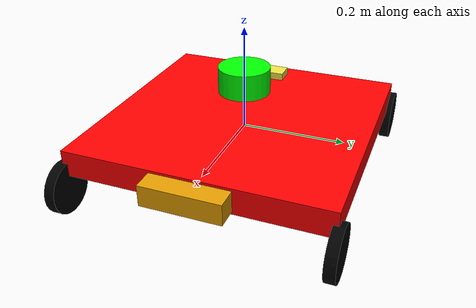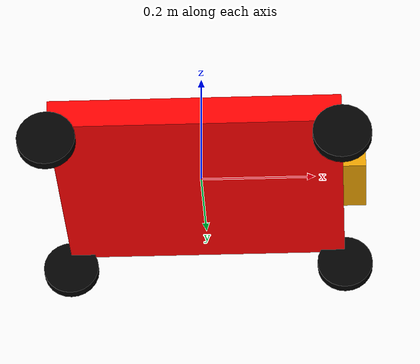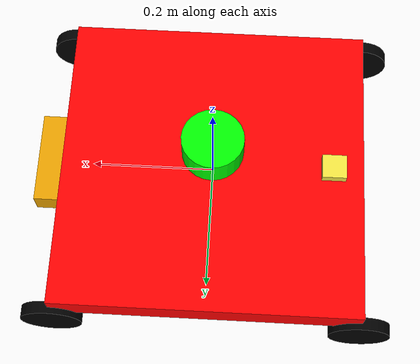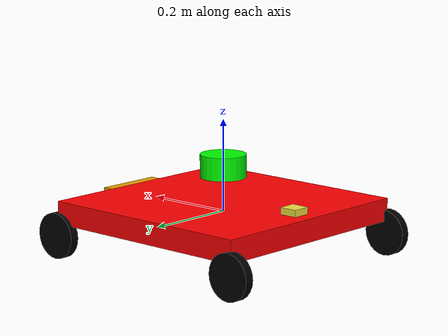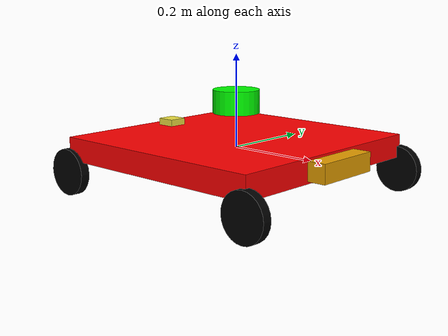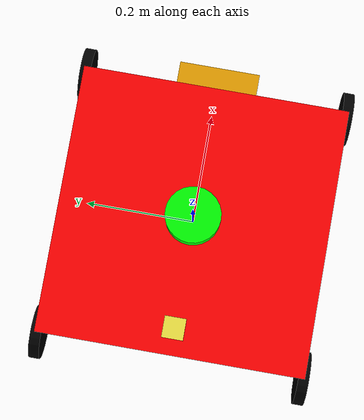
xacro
<?xml version="1.0"?>
<robot xmlns:xacro="http://www.ros.org/wiki/xacro" name="CRAP">
  <xacro:property name="base_width" value="0.5"/>
  <xacro:property name="base_length" value="0.5"/>
  <xacro:property name="base_height" value="0.05"/>

  <xacro:property name="wheel_radius" value="0.05"/>
  <xacro:property name="wheel_width" value="0.02"/>
  <xacro:property name="wheel_ygap" value="0.025"/>
  <xacro:property name="wheel_zoff" value="0.05"/>

  <!-- Define the base link of the robot -->

  <link name="base_link">

    <visual>
      <geometry>
        <box size="${base_length} ${base_width} ${base_height}"/>
      </geometry>
      <material name="red">
        <color rgba="1 0 0 1"/>
      </material>
    </visual>

    <collision>
      <geometry>
          <box size="0.5 0.5 0.05"/>
      </geometry>
    </collision>
  </link>

  <link name="base_link_intertia">
    <inertial>
      <mass value="10"/>
      <origin xyz="0 0 0" rpy="0 0 0"/>
      <inertia ixx="0.1" ixy="0" ixz="0" iyy="0.1" iyz="0" izz="0.1"/>
    </inertial>
  </link>

  <link name="base_footprint"/>

  <joint name="base_joint_inertia" type="fixed">
    <parent link="base_link"/>
    <child link="base_link_intertia"/>
    <origin xyz="0.0 0.0 0.0" rpy="0 0 0"/>
  </joint>

  <joint name="base_joint" type="fixed">
    <parent link="base_link"/>
    <child link="base_footprint"/>
    <origin xyz="0.0 0.0 ${-(wheel_radius+wheel_zoff)}" rpy="0 0 0"/>
  </joint>

  <!-- Define the four  wheels -->
  <xacro:include filename="wheel.xacro"/>
  <xacro:wheel name="front_left_wheel" parent="base_link" x="0.25" y="0.25" z = "${-wheel_zoff}" radius = "${wheel_radius}" thickness = "${wheel_width}"/>
  <xacro:wheel name="front_right_wheel" parent="base_link" x="0.25" y="-0.25" z = "${-wheel_zoff}" radius = "${wheel_radius}" thickness = "${wheel_width}"/>

  <xacro:include filename="wheel_driven.xacro"/>
  <xacro:wheel_driven name="rear_left_wheel" parent="base_link" x="-0.25" y="0.25" z = "${-wheel_zoff}" radius = "${wheel_radius}" thickness = "${wheel_width}"/>
  <xacro:wheel_driven name="rear_right_wheel" parent="base_link" x="-0.25" y="-0.25" z = "${-wheel_zoff}" radius = "${wheel_radius}" thickness = "${wheel_width}"/>

  <!-- Define the LIDAR sensor -->
  <xacro:include filename="lidar_gazebo.xacro"/>
  <xacro:rplidar prefix="lidar" parent="base_link" x="0" y="0" z="0.1"/>

  <!-- Define the rgbd camera -->
  <xacro:include filename="kinect_gazebo.xacro"/>
  <xacro:kinect_camera prefix="kinect2" parent="base_link" x="0.27" y="0" z="0"/>

  <!-- Define the imu camera -->
  <xacro:include filename="imu.xacro"/>
  <xacro:imu prefix="imu" parent="base_link" x="-0.2" y="0" z="0.02"/>

  <ros2_control name = "GazeboSystem" type = "system">
    <hardware>
        <plugin>gazebo_ros2_control/GazeboSystem</plugin>
    </hardware>
    <joint name="rear_left_wheel_joint">
            <command_interface name="velocity">
                <param name="min">-10</param>
                <param name="max">10</param>
            </command_interface>
            <state_interface name="velocity"/>
            <state_interface name="position"/>
    </joint>
    <joint name="rear_right_wheel_joint">
        <command_interface name="velocity">
            <param name="min">-10</param>
            <param name="max">10</param>
        </command_interface>
        <state_interface name="velocity"/>
        <state_interface name="position"/>
    </joint>
  </ros2_control>

  <gazebo>
    <plugin name="gazebo_ros2_control" filename="libgazebo_ros2_control.so">
      <parameters>$(find CRAP_sim_def)/config/controller.yaml</parameters>
    </plugin>
  </gazebo>

</robot>

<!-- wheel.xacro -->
<robot xmlns:xacro="http://www.ros.org/wiki/xacro" name="wheel_macro">
  <xacro:property name="M_PI" value="3.141592653589793"/>

  <xacro:macro name="wheel" params="name parent x y z radius thickness">
    <!-- Define the wheel link -->
    <link name="${name}_link">
      <inertial>
        <mass value="1.0"/>
        <origin xyz="0 0 0" rpy="0 ${M_PI/2} ${M_PI/2}"/>
        <inertia ixx="0.005" ixy="0" ixz="0" iyy="0.005" iyz="0" izz="0.005"/>
      </inertial>

      <visual>
        <origin xyz="0 0 0" rpy="0 ${M_PI/2} ${M_PI/2}"/>
        <geometry>
          <cylinder radius="${radius}" length="${thickness}"/>
        </geometry>
        <material name="black">
          <color rgba="0 0 0 1"/>
        </material>
      </visual>

      <collision>
        <origin xyz="0.0 0.0 0.0" rpy="0 ${M_PI/2} ${M_PI/2}" />
          <geometry>
              <cylinder length="${thickness}" radius="${radius}"/>
          </geometry>
      </collision>
    </link>

    <!-- Define the wheel joint -->

    <joint name="${name}_joint" type="fixed">
      <origin xyz="${x} ${y} ${z}" rpy="0 0 0"/>
      <parent link="${parent}"/>
      <child link="${name}_link"/>
    </joint>

    <gazebo reference="${name}_link">
      <material>Gazebo/Blue</material>
      <kp>1000000.0</kp> <!-- kp and kd for rubber -->
      <kd>100.0</kd>
      <mu1>0.01</mu1>
      <mu2>0.01</mu2>
      <maxVel>1.0</maxVel>
      <minDepth>0.00</minDepth>
    </gazebo>

  </xacro:macro>

</robot>

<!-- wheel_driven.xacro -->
<robot xmlns:xacro="http://www.ros.org/wiki/xacro" name="wheel_driven">
  <xacro:property name="M_PI" value="3.141592653589793"/>

  <xacro:macro name="wheel_driven" params="name parent x y z radius thickness">
    <!-- Define the wheel link -->
    <link name="${name}_link">
      <inertial>
        <mass value="1.0"/>
        <origin xyz="0 0 0" rpy="0 ${M_PI/2} ${M_PI/2}"/>
        <inertia ixx="0.005" ixy="0" ixz="0" iyy="0.005" iyz="0" izz="0.005"/>
      </inertial>

      <visual>
        <origin xyz="0 0 0" rpy="0 ${M_PI/2} ${M_PI/2}"/>
        <geometry>
          <cylinder radius="${radius}" length="${thickness}"/>
        </geometry>
        <material name="black">
          <color rgba="0 0 0 1"/>
        </material>
      </visual>

      <collision>
        <origin xyz="0.0 0.0 0.0" rpy="0 ${M_PI/2} ${M_PI/2}" />
          <geometry>
              <cylinder length="${thickness}" radius="${radius}"/>
          </geometry>
      </collision>
    </link>

    <!-- Define the wheel joint -->
    <joint name="${name}_joint" type="continuous">
      <origin xyz="${x} ${y} ${z}" rpy="0 0 0"/>
      <parent link="${parent}"/>
      <child link="${name}_link"/>
      <axis xyz="0 1 0"/>
      <limit effort="10000" velocity="1000" />
      <dynamics damping="1.0" friction="1.0" />
    </joint>

    <gazebo reference="${name}_link">
      <material>Gazebo/Blue</material>
      <kp>1000000.0</kp> <!-- kp and kd for rubber -->
      <kd>100.0</kd>
      <mu1>1.0</mu1>
      <mu2>1.0</mu2>
      <maxVel>1.0</maxVel>
      <minDepth>0.00</minDepth>
    </gazebo>

  </xacro:macro>

</robot>

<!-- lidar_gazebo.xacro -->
<robot xmlns:xacro="http://www.ros.org/wiki/xacro" name="laser">

    <xacro:macro name="rplidar" params="prefix parent x y z">
        <!-- Create laser reference frame -->
        <link name="${prefix}_link">
            <inertial>
                <mass value="0.1" />
                <origin xyz="0 0 0" />
                <inertia ixx="0.01" ixy="0.0" ixz="0.0"
                         iyy="0.01" iyz="0.0"
                         izz="0.01" />
            </inertial>

            <visual>
                <origin xyz=" 0 0 0 " rpy="0 0 0" />
                <geometry>
                    <cylinder length="0.05" radius="0.05"/>
                </geometry>
                <material name="green">
                    <color rgba="0 1 0 1"/>
                </material>
            </visual>

            <collision>
                <origin xyz="0.0 0.0 0.0" rpy="0 0 0" />
                <geometry>
                    <cylinder length="0.06" radius="0.05"/>
                </geometry>
            </collision>
        </link>

        <joint name="${prefix}_joint" type="fixed">
            <origin xyz="${x} ${y} ${z}" rpy="0 0 0"/>
            <parent link="${parent}"/>
            <child link="${prefix}_link"/>
        </joint>

        <gazebo reference="${prefix}_link">
            <material>Gazebo/Black</material>
        </gazebo>

        <gazebo reference="lidar_link">
        <sensor name="lidar" type="ray">
            <always_on>true</always_on>
            <visualize>true</visualize>
            <update_rate>5</update_rate>
            <ray>
            <scan>
                <horizontal>
                <samples>360</samples>
                <resolution>1.000000</resolution>
                <min_angle>0.000000</min_angle>
                <max_angle>6.280000</max_angle>
                </horizontal>
            </scan>
            <range>
                <min>0.120000</min>
                <max>8</max>
                <resolution>0.015000</resolution>
            </range>
            <noise>
                <type>gaussian</type>
                <mean>0.0</mean>
                <stddev>0.01</stddev>
            </noise>
            </ray>
            <plugin name="scan" filename="libgazebo_ros_ray_sensor.so">
            <ros>
                <remapping>~/out:=scan</remapping>
            </ros>
            <output_type>sensor_msgs/LaserScan</output_type>
            <frame_name>lidar_link</frame_name>
            </plugin>
        </sensor>
        </gazebo>

    </xacro:macro>
</robot>

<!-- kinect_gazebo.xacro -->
<robot xmlns:xacro="http://www.ros.org/wiki/xacro" name="kinect_camera">
    <xacro:property name="M_PI" value="3.141592653589793"/>
    <xacro:macro name="kinect_camera" params="prefix parent x y z">
        <!-- Create kinect reference frame -->
        <link name="${prefix}_link">
            <origin xyz="0 0 0" rpy="0 0 0"/>
            <visual>
                <origin xyz="0 0 0" rpy="0 0 0"/>
                <geometry>
                    <box size="0.04 0.15 0.04" />
                </geometry>
            </visual>
            <collision>
                <geometry>
                    <box size="0.04 0.15 0.04"/>
                </geometry>
            </collision>
        </link>

        <!-- location of the kinect relative to base -->
        <joint name="${prefix}_joint" type="fixed">
            <origin xyz="${x} ${y} ${z}" rpy="0 0 0"/>
            <parent link="${parent}"/>
            <child link="${prefix}_link"/>
        </joint>

        <link name="${prefix}_depth_frame"/>

        <!-- location of the depth camera relative to kinect frame -->
        <joint name="${prefix}_depth_joint" type="fixed">
            <origin xyz="0 0 0" rpy="${-pi/2} 0 ${-pi/2}"/>
            <parent link="${prefix}_link"/>
            <child link="${prefix}_depth_frame"/>
        </joint>

        <link name="${prefix}_rgb_frame"/>

        <!-- location of the rgb frame relative to kinect frame -->
        <joint name="${prefix}_rgb_joint" type="fixed">
            <origin xyz="0 0 0" rpy="${-pi/2} 0 ${-pi/2}"/>
            <parent link="${prefix}_link"/>
            <child link="${prefix}_rgb_frame"/>
        </joint>

        <gazebo reference="${prefix}_link">
            <sensor name="depth_camera" type="depth">
                <visualize>true</visualize>
                <update_rate>15.0</update_rate>
                <camera name="kinect">
                <horizontal_fov>1.047198</horizontal_fov>
                <image>
                    <width>640</width>
                    <height>480</height>
                    <format>R8G8B8</format>
                </image>
                <clip>
                    <near>0.05</near>
                    <far>3</far>
                </clip>
                </camera>
                <plugin name="depth_camera_controller" filename="libgazebo_ros_camera.so">
                <baseline>0.2</baseline>
                <alwaysOn>true</alwaysOn>
                <updateRate>15.0</updateRate>
                <frame_name>${prefix}_depth_frame</frame_name>
                <pointCloudCutoff>0.5</pointCloudCutoff>
                <pointCloudCutoffMax>3.0</pointCloudCutoffMax>
                <distortionK1>0</distortionK1>
                <distortionK2>0</distortionK2>
                <distortionK3>0</distortionK3>
                <distortionT1>0</distortionT1>
                <distortionT2>0</distortionT2>
                <CxPrime>0</CxPrime>
                <Cx>0</Cx>
                <Cy>0</Cy>
                <focalLength>0</focalLength>
                <hackBaseline>0</hackBaseline>
                </plugin>
            </sensor>
        </gazebo>

    </xacro:macro>
</robot>

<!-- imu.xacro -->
<robot xmlns:xacro="http://www.ros.org/wiki/xacro" name="imu">
    <xacro:property name="M_PI" value="3.141592653589793"/>
    <xacro:macro name="imu" params="prefix parent x y z">
        <!-- Create kinect reference frame -->
        <!-- Add mesh for kinect -->
        <link name="${prefix}_link">
            <origin xyz="0 0 0" rpy="0 0 0"/>
            <visual>
                <origin xyz="0 0 0" rpy="0 0 ${M_PI/2}"/>
                <geometry>
                    <box size="0.04 0.04 0.04" />
                </geometry>
            </visual>
        </link>

        <joint name="${prefix}_joint" type="fixed">
            <origin xyz="${x} ${y} ${z}" rpy="0 0 0"/>
            <parent link="${parent}"/>
            <child link="${prefix}_link"/>
        </joint>

        <gazebo reference="${prefix}_link">
            <sensor name="imu_sensor" type="imu">
                <plugin filename="libgazebo_ros_imu_sensor.so" name="imu_plugin">
                    <ros>
                        <remapping>~/out:=imu</remapping>
                    </ros>
                    <initial_orientation_as_reference>false</initial_orientation_as_reference>
                </plugin>
                <always_on>true</always_on>
                <update_rate>100</update_rate>
                <visualize>true</visualize>
                <imu>
                <angular_velocity>
                    <x>
                        <noise type="gaussian">
                            <mean>0.0</mean>
                            <stddev>2e-4</stddev>
                            <bias_mean>0.0000075</bias_mean>
                            <bias_stddev>0.0000008</bias_stddev>
                        </noise>
                    </x>
                    <y>
                        <noise type="gaussian">
                            <mean>0.0</mean>
                            <stddev>2e-4</stddev>
                            <bias_mean>0.0000075</bias_mean>
                            <bias_stddev>0.0000008</bias_stddev>
                        </noise>
                    </y>
                    <z>
                        <noise type="gaussian">
                            <mean>0.0</mean>
                            <stddev>2e-4</stddev>
                            <bias_mean>0.0000075</bias_mean>
                            <bias_stddev>0.0000008</bias_stddev>
                        </noise>
                    </z>
                    </angular_velocity>
                    <linear_acceleration>
                        <x>
                            <noise type="gaussian">
                                <mean>0.0</mean>
                                <stddev>1.7e-2</stddev>
                                <bias_mean>0.1</bias_mean>
                                <bias_stddev>0.001</bias_stddev>
                            </noise>
                        </x>
                        <y>
                            <noise type="gaussian">
                                <mean>0.0</mean>
                                <stddev>1.7e-2</stddev>
                                <bias_mean>0.1</bias_mean>
                                <bias_stddev>0.001</bias_stddev>
                            </noise>
                        </y>
                        <z>
                            <noise type="gaussian">
                                <mean>0.0</mean>
                                <stddev>1.7e-2</stddev>
                                <bias_mean>0.1</bias_mean>
                                <bias_stddev>0.001</bias_stddev>
                            </noise>
                        </z>
                    </linear_acceleration>
                </imu>
            </sensor>
        </gazebo>

    </xacro:macro>
</robot>
